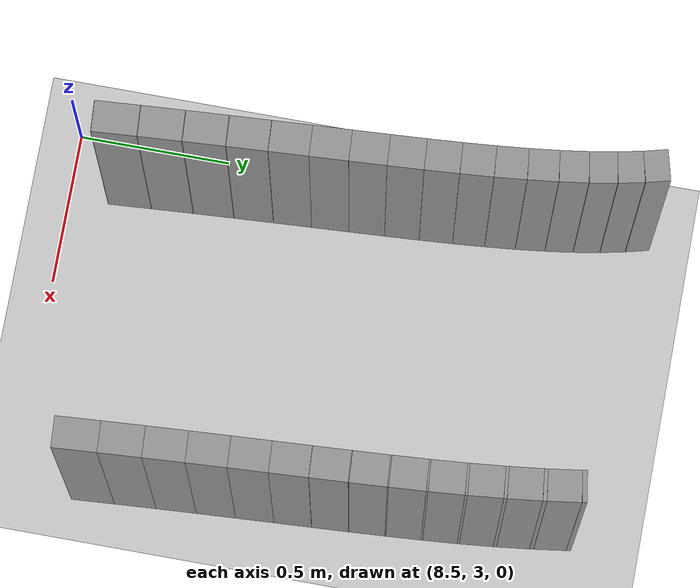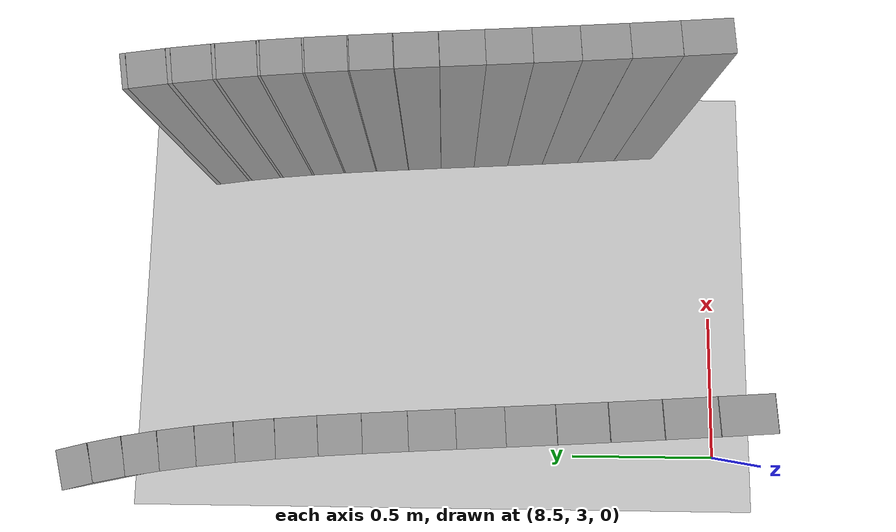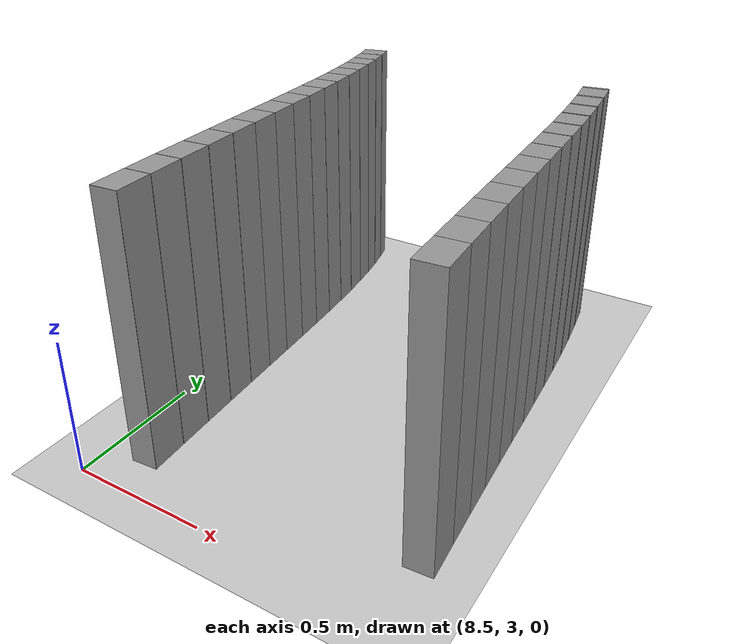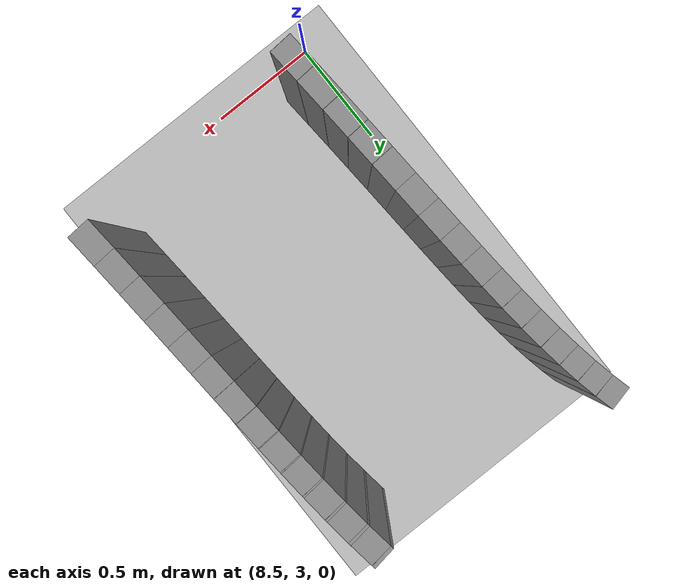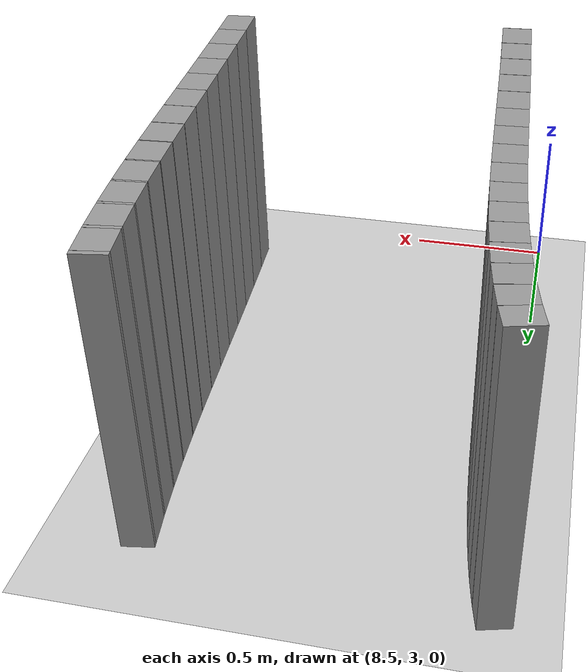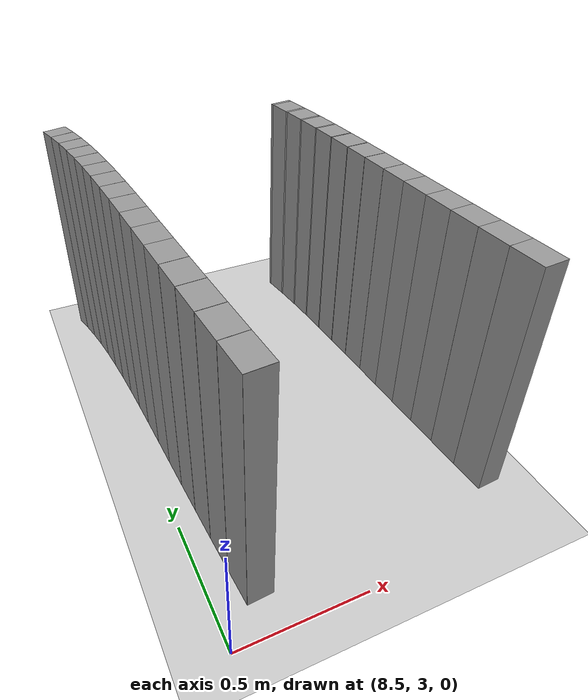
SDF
<sdf version="1.6">
 <world name="default">
  <include><uri>model://ground_plane</uri></include>
  <include><uri>model://sun</uri></include>
  <model name="wall_181_outward">
   <static>true</static>
   <link name="link">
    <collision name="collision">
     <geometry><box><size>0.0009846858905019167 0.1 1.0</size></box></geometry>
    </collision>
    <visual name="visual">
     <geometry><box><size>0.0009846858905019167 0.1 1.0</size></box></geometry>
     <material>
      <script><uri>file://media/materials/scripts/gazebo.material</uri><name>Gazebo/Gray</name></script>
     </material>
    </visual>
   </link>
   <pose>8.65808380273631 3.126943358180662 0.5 0 0 1.639837956855327</pose>
  </model>
  <model name="wall_182_outward">
   <static>true</static>
   <link name="link">
    <collision name="collision">
     <geometry><box><size>0.14365857857073439 0.1 1.0</size></box></geometry>
    </collision>
    <visual name="visual">
     <geometry><box><size>0.14365857857073439 0.1 1.0</size></box></geometry>
     <material>
      <script><uri>file://media/materials/scripts/gazebo.material</uri><name>Gazebo/Gray</name></script>
     </material>
    </visual>
   </link>
   <pose>8.65316512848498 3.199097534066887 0.5 0 0 1.6388532708069434</pose>
  </model>
  <model name="wall_183_outward">
   <static>true</static>
   <link name="link">
    <collision name="collision">
     <geometry><box><size>0.001421012813645482 0.1 1.0</size></box></geometry>
    </collision>
    <visual name="visual">
     <geometry><box><size>0.001421012813645482 0.1 1.0</size></box></geometry>
     <material>
      <script><uri>file://media/materials/scripts/gazebo.material</uri><name>Gazebo/Gray</name></script>
     </material>
    </visual>
   </link>
   <pose>8.648233109168988 3.27146946952171 0.5 0 0 1.6374322575152969</pose>
  </model>
  <model name="wall_184_outward">
   <static>true</static>
   <link name="link">
    <collision name="collision">
     <geometry><box><size>0.13919002764957894 0.1 1.0</size></box></geometry>
    </collision>
    <visual name="visual">
     <geometry><box><size>0.13919002764957894 0.1 1.0</size></box></geometry>
     <material>
      <script><uri>file://media/materials/scripts/gazebo.material</uri><name>Gazebo/Gray</name></script>
     </material>
    </visual>
   </link>
   <pose>8.643650382303097 3.3416254720422467 0.5 0 0 1.6360112442231782</pose>
  </model>
  <model name="wall_185_outward">
   <static>true</static>
   <link name="link">
    <collision name="collision">
     <geometry><box><size>0.001596361126806575 0.1 1.0</size></box></geometry>
    </collision>
    <visual name="visual">
     <geometry><box><size>0.001596361126806575 0.1 1.0</size></box></geometry>
     <material>
      <script><uri>file://media/materials/scripts/gazebo.material</uri><name>Gazebo/Gray</name></script>
     </material>
    </visual>
   </link>
   <pose>8.639064220814166 3.4118691108817245 0.5 0 0 1.6344148824183604</pose>
  </model>
  <model name="wall_186_outward">
   <static>true</static>
   <link name="link">
    <collision name="collision">
     <geometry><box><size>0.13500516715398175 0.1 1.0</size></box></geometry>
    </collision>
    <visual name="visual">
     <geometry><box><size>0.13500516715398175 0.1 1.0</size></box></geometry>
     <material>
      <script><uri>file://media/materials/scripts/gazebo.material</uri><name>Gazebo/Gray</name></script>
     </material>
    </visual>
   </link>
   <pose>8.634829501300867 3.4800384690677975 0.5 0 0 1.6328185206135242</pose>
  </model>
  <model name="wall_187_outward">
   <static>true</static>
   <link name="link">
    <collision name="collision">
     <geometry><box><size>0.001477948734229055 0.1 1.0</size></box></geometry>
    </collision>
    <visual name="visual">
     <geometry><box><size>0.001477948734229055 0.1 1.0</size></box></geometry>
     <material>
      <script><uri>file://media/materials/scripts/gazebo.material</uri><name>Gazebo/Gray</name></script>
     </material>
    </visual>
   </link>
   <pose>8.630600813319642 3.548148881778599 0.5 0 0 1.6313405713418323</pose>
  </model>
  <model name="wall_188_outward">
   <static>true</static>
   <link name="link">
    <collision name="collision">
     <geometry><box><size>0.13110091205188307 0.1 1.0</size></box></geometry>
    </collision>
    <visual name="visual">
     <geometry><box><size>0.13110091205188307 0.1 1.0</size></box></geometry>
     <material>
      <script><uri>file://media/materials/scripts/gazebo.material</uri><name>Gazebo/Gray</name></script>
     </material>
    </visual>
   </link>
   <pose>8.626686528373108 3.6143226443237637 0.5 0 0 1.6298626220689547</pose>
  </model>
  <model name="wall_189_outward">
   <static>true</static>
   <link name="link">
    <collision name="collision">
     <geometry><box><size>0.0010540876238989754 0.1 1.0</size></box></geometry>
    </collision>
    <visual name="visual">
     <geometry><box><size>0.0010540876238989754 0.1 1.0</size></box></geometry>
     <material>
      <script><uri>file://media/materials/scripts/gazebo.material</uri><name>Gazebo/Gray</name></script>
     </material>
    </visual>
   </link>
   <pose>8.622786398914531 3.6802849436821585 0.5 0 0 1.628808534248347</pose>
  </model>
  <model name="wall_190_outward">
   <static>true</static>
   <link name="link">
    <collision name="collision">
     <geometry><box><size>0.1274690021187451 0.1 1.0</size></box></geometry>
    </collision>
    <visual name="visual">
     <geometry><box><size>0.1274690021187451 0.1 1.0</size></box></geometry>
     <material>
      <script><uri>file://media/materials/scripts/gazebo.material</uri><name>Gazebo/Gray</name></script>
     </material>
    </visual>
   </link>
   <pose>8.619127606295903 3.744442245281431 0.5 0 0 1.6277544464307574</pose>
  </model>
  <model name="wall_191_outward">
   <static>true</static>
   <link name="link">
    <collision name="collision">
     <geometry><box><size>0.12408286811491556 0.1 1.0</size></box></geometry>
    </collision>
    <visual name="visual">
     <geometry><box><size>0.12408286811491556 0.1 1.0</size></box></geometry>
     <material>
      <script><uri>file://media/materials/scripts/gazebo.material</uri><name>Gazebo/Gray</name></script>
     </material>
    </visual>
   </link>
   <pose>8.61200878268524 3.870016551770031 0.5 0 0 1.62708827171126</pose>
  </model>
  <model name="wall_192_outward">
   <static>true</static>
   <link name="link">
    <collision name="collision">
     <geometry><box><size>0.11960977318167446 0.1 1.0</size></box></geometry>
    </collision>
    <visual name="visual">
     <geometry><box><size>0.11960977318167446 0.1 1.0</size></box></geometry>
     <material>
      <script><uri>file://media/materials/scripts/gazebo.material</uri><name>Gazebo/Gray</name></script>
     </material>
    </visual>
   </link>
   <pose>8.605070868698578 3.991665160925017 0.5 0 0 1.6284711639940075</pose>
  </model>
  <model name="wall_193_outward">
   <static>true</static>
   <link name="link">
    <collision name="collision">
     <geometry><box><size>0.11523822448251414 0.1 1.0</size></box></geometry>
    </collision>
    <visual name="visual">
     <geometry><box><size>0.11523822448251414 0.1 1.0</size></box></geometry>
     <material>
      <script><uri>file://media/materials/scripts/gazebo.material</uri><name>Gazebo/Gray</name></script>
     </material>
    </visual>
   </link>
   <pose>8.59807111550164 4.108880105906995 0.5 0 0 1.6324890935750607</pose>
  </model>
  <model name="wall_194_outward">
   <static>true</static>
   <link name="link">
    <collision name="collision">
     <geometry><box><size>0.11079864901834684 0.1 1.0</size></box></geometry>
    </collision>
    <visual name="visual">
     <geometry><box><size>0.11079864901834684 0.1 1.0</size></box></geometry>
     <material>
      <script><uri>file://media/materials/scripts/gazebo.material</uri><name>Gazebo/Gray</name></script>
     </material>
    </visual>
   </link>
   <pose>8.590704701506574 4.221657484795065 0.5 0 0 1.6396961787246884</pose>
  </model>
  <model name="wall_195_outward">
   <static>true</static>
   <link name="link">
    <collision name="collision">
     <geometry><box><size>0.1062916871452372 0.1 1.0</size></box></geometry>
    </collision>
    <visual name="visual">
     <geometry><box><size>0.1062916871452372 0.1 1.0</size></box></geometry>
     <material>
      <script><uri>file://media/materials/scripts/gazebo.material</uri><name>Gazebo/Gray</name></script>
     </material>
    </visual>
   </link>
   <pose>8.582653476334471 4.329902025655575 0.5 0 0 1.6506095522564228</pose>
  </model>
  <model name="wall_196_outward">
   <static>true</static>
   <link name="link">
    <collision name="collision">
     <geometry><box><size>0.10171289454144286 0.1 1.0</size></box></geometry>
    </collision>
    <visual name="visual">
     <geometry><box><size>0.10171289454144286 0.1 1.0</size></box></geometry>
     <material>
      <script><uri>file://media/materials/scripts/gazebo.material</uri><name>Gazebo/Gray</name></script>
     </material>
    </visual>
   </link>
   <pose>8.573596636017339 4.433506243989507 0.5 0 0 1.665707491691132</pose>
  </model>
  <model name="wall_197_outward">
   <static>true</static>
   <link name="link">
    <collision name="collision">
     <geometry><box><size>0.09706615270189756 0.1 1.0</size></box></geometry>
    </collision>
    <visual name="visual">
     <geometry><box><size>0.09706615270189756 0.1 1.0</size></box></geometry>
     <material>
      <script><uri>file://media/materials/scripts/gazebo.material</uri><name>Gazebo/Gray</name></script>
     </material>
    </visual>
   </link>
   <pose>8.563224902694095 4.532348253878128 0.5 0 0 1.6854462675255808</pose>
  </model>
  <model name="wall_198_outward">
   <static>true</static>
   <link name="link">
    <collision name="collision">
     <geometry><box><size>0.09235992115724898 0.1 1.0</size></box></geometry>
    </collision>
    <visual name="visual">
     <geometry><box><size>0.09235992115724898 0.1 1.0</size></box></geometry>
     <material>
      <script><uri>file://media/materials/scripts/gazebo.material</uri><name>Gazebo/Gray</name></script>
     </material>
    </visual>
   </link>
   <pose>8.55125463066131 4.626294491207142 0.5 0 0 1.7102287401825482</pose>
  </model>
  <model name="wall_199_outward">
   <static>true</static>
   <link name="link">
    <collision name="collision">
     <geometry><box><size>0.08759831414546027 0.1 1.0</size></box></geometry>
    </collision>
    <visual name="visual">
     <geometry><box><size>0.08759831414546027 0.1 1.0</size></box></geometry>
     <material>
      <script><uri>file://media/materials/scripts/gazebo.material</uri><name>Gazebo/Gray</name></script>
     </material>
    </visual>
   </link>
   <pose>8.53744287080287 4.715196875224038 0.5 0 0 1.7404158646846464</pose>
  </model>
  <model name="wall_200_outward">
   <static>true</static>
   <link name="link">
    <collision name="collision">
     <geometry><box><size>0.08279096462977255 0.1 1.0</size></box></geometry>
    </collision>
    <visual name="visual">
     <geometry><box><size>0.08279096462977255 0.1 1.0</size></box></geometry>
     <material>
      <script><uri>file://media/materials/scripts/gazebo.material</uri><name>Gazebo/Gray</name></script>
     </material>
    </visual>
   </link>
   <pose>8.52160032079816 4.79889155926119 0.5 0 0 1.7763433578772803</pose>
  </model>
  <model name="wall_201_outward">
   <static>true</static>
   <link name="link">
    <collision name="collision">
     <geometry><box><size>0.07796044053849092 0.1 1.0</size></box></geometry>
    </collision>
    <visual name="visual">
     <geometry><box><size>0.07796044053849092 0.1 1.0</size></box></geometry>
     <material>
      <script><uri>file://media/materials/scripts/gazebo.material</uri><name>Gazebo/Gray</name></script>
     </material>
    </visual>
   </link>
   <pose>8.503601538717838 4.877207944605388 0.5 0 0 1.818308032217738</pose>
  </model>
  <model name="wall_349_inward">
   <static>true</static>
   <link name="link">
    <collision name="collision">
     <geometry><box><size>0.14245572826187478 0.1 1.0</size></box></geometry>
    </collision>
    <visual name="visual">
     <geometry><box><size>0.14245572826187478 0.1 1.0</size></box></geometry>
     <material>
      <script><uri>file://media/materials/scripts/gazebo.material</uri><name>Gazebo/Gray</name></script>
     </material>
    </visual>
   </link>
   <pose>9.650857566467433 3.266993123699071 0.5 0 0 1.6388532708069428</pose>
  </model>
  <model name="wall_350_inward">
   <static>true</static>
   <link name="link">
    <collision name="collision">
     <geometry><box><size>0.13768133894507925 0.1 1.0</size></box></geometry>
    </collision>
    <visual name="visual">
     <geometry><box><size>0.13768133894507925 0.1 1.0</size></box></geometry>
     <material>
      <script><uri>file://media/materials/scripts/gazebo.material</uri><name>Gazebo/Gray</name></script>
     </material>
    </visual>
   </link>
   <pose>9.641527499945772 3.4067504289086425 0.5 0 0 1.6360112442231702</pose>
  </model>
  <model name="wall_351_inward">
   <static>true</static>
   <link name="link">
    <collision name="collision">
     <geometry><box><size>0.13346801039905704 0.1 1.0</size></box></geometry>
    </collision>
    <visual name="visual">
     <geometry><box><size>0.13346801039905704 0.1 1.0</size></box></geometry>
     <material>
      <script><uri>file://media/materials/scripts/gazebo.material</uri><name>Gazebo/Gray</name></script>
     </material>
    </visual>
   </link>
   <pose>9.632904906642807 3.5420504528118344 0.5 0 0 1.632818520613537</pose>
  </model>
  <model name="wall_352_inward">
   <static>true</static>
   <link name="link">
    <collision name="collision">
     <geometry><box><size>0.1298348927739865 0.1 1.0</size></box></geometry>
    </collision>
    <visual name="visual">
     <geometry><box><size>0.1298348927739865 0.1 1.0</size></box></geometry>
     <material>
      <script><uri>file://media/materials/scripts/gazebo.material</uri><name>Gazebo/Gray</name></script>
     </material>
    </visual>
   </link>
   <pose>9.62493636650579 3.6734603809795803 0.5 0 0 1.629862622068953</pose>
  </model>
  <model name="wall_353_inward">
   <static>true</static>
   <link name="link">
    <collision name="collision">
     <geometry><box><size>0.12677519018877634 0.1 1.0</size></box></geometry>
    </collision>
    <visual name="visual">
     <geometry><box><size>0.12677519018877634 0.1 1.0</size></box></geometry>
     <material>
      <script><uri>file://media/materials/scripts/gazebo.material</uri><name>Gazebo/Gray</name></script>
     </material>
    </visual>
   </link>
   <pose>9.617495676311542 3.801549418412253 0.5 0 0 1.627754446430746</pose>
  </model>
  <model name="wall_354_inward">
   <static>true</static>
   <link name="link">
    <collision name="collision">
     <geometry><box><size>0.1239285119475373 0.1 1.0</size></box></geometry>
    </collision>
    <visual name="visual">
     <geometry><box><size>0.1239285119475373 0.1 1.0</size></box></geometry>
     <material>
      <script><uri>file://media/materials/scripts/gazebo.material</uri><name>Gazebo/Gray</name></script>
     </material>
    </visual>
   </link>
   <pose>9.61040099880638 3.926700328794552 0.5 0 0 1.6270873751651376</pose>
  </model>
  <model name="wall_355_inward">
   <static>true</static>
   <link name="link">
    <collision name="collision">
     <geometry><box><size>0.0006918943592319045 0.1 1.0</size></box></geometry>
    </collision>
    <visual name="visual">
     <geometry><box><size>0.0006918943592319045 0.1 1.0</size></box></geometry>
     <material>
      <script><uri>file://media/materials/scripts/gazebo.material</uri><name>Gazebo/Gray</name></script>
     </material>
    </visual>
   </link>
   <pose>9.606895105240417 3.988911823850194 0.5 0 0 1.62777926958148</pose>
  </model>
  <model name="wall_356_inward">
   <static>true</static>
   <link name="link">
    <collision name="collision">
     <geometry><box><size>0.1209602041920776 0.1 1.0</size></box></geometry>
    </collision>
    <visual name="visual">
     <geometry><box><size>0.1209602041920776 0.1 1.0</size></box></geometry>
     <material>
      <script><uri>file://media/materials/scripts/gazebo.material</uri><name>Gazebo/Gray</name></script>
     </material>
    </visual>
   </link>
   <pose>9.603389156294176 4.049636749395266 0.5 0 0 1.6284711639940022</pose>
  </model>
  <model name="wall_357_inward">
   <static>true</static>
   <link name="link">
    <collision name="collision">
     <geometry><box><size>0.002008963439190876 0.1 1.0</size></box></geometry>
    </collision>
    <visual name="visual">
     <geometry><box><size>0.002008963439190876 0.1 1.0</size></box></geometry>
     <material>
      <script><uri>file://media/materials/scripts/gazebo.material</uri><name>Gazebo/Gray</name></script>
     </material>
    </visual>
   </link>
   <pose>9.599842994068009 4.11101898245386 0.5 0 0 1.6304801287837094</pose>
  </model>
  <model name="wall_358_inward">
   <static>true</static>
   <link name="link">
    <collision name="collision">
     <geometry><box><size>0.11804448731502447 0.1 1.0</size></box></geometry>
    </collision>
    <visual name="visual">
     <geometry><box><size>0.11804448731502447 0.1 1.0</size></box></geometry>
     <material>
      <script><uri>file://media/materials/scripts/gazebo.material</uri><name>Gazebo/Gray</name></script>
     </material>
    </visual>
   </link>
   <pose>9.596144142175817 4.170931635665854 0.5 0 0 1.6324890935750698</pose>
  </model>
  <model name="wall_359_inward">
   <static>true</static>
   <link name="link">
    <collision name="collision">
     <geometry><box><size>0.003603534775835416 0.1 1.0</size></box></geometry>
    </collision>
    <visual name="visual">
     <geometry><box><size>0.003603534775835416 0.1 1.0</size></box></geometry>
     <material>
      <script><uri>file://media/materials/scripts/gazebo.material</uri><name>Gazebo/Gray</name></script>
     </material>
    </visual>
   </link>
   <pose>9.592387640808173 4.231639523425143 0.5 0 0 1.6360926361501031</pose>
  </model>
  <model name="wall_360_inward">
   <static>true</static>
   <link name="link">
    <collision name="collision">
     <geometry><box><size>0.11532879856731755 0.1 1.0</size></box></geometry>
    </collision>
    <visual name="visual">
     <geometry><box><size>0.11532879856731755 0.1 1.0</size></box></geometry>
     <material>
      <script><uri>file://media/materials/scripts/gazebo.material</uri><name>Gazebo/Gray</name></script>
     </material>
    </visual>
   </link>
   <pose>9.58830014979762 4.290965032665978 0.5 0 0 1.6396961787246869</pose>
  </model>
  <model name="wall_361_inward">
   <static>true</static>
   <link name="link">
    <collision name="collision">
     <geometry><box><size>0.005456659686704238 0.1 1.0</size></box></geometry>
    </collision>
    <visual name="visual">
     <geometry><box><size>0.005456659686704238 0.1 1.0</size></box></geometry>
     <material>
      <script><uri>file://media/materials/scripts/gazebo.material</uri><name>Gazebo/Gray</name></script>
     </material>
    </visual>
   </link>
   <pose>9.584127541689405 4.35121340516268 0.5 0 0 1.645152865490588</pose>
  </model>
  <model name="wall_362_inward">
   <static>true</static>
   <link name="link">
    <collision name="collision">
     <geometry><box><size>0.11279461416686547 0.1 1.0</size></box></geometry>
    </collision>
    <visual name="visual">
     <geometry><box><size>0.11279461416686547 0.1 1.0</size></box></geometry>
     <material>
      <script><uri>file://media/materials/scripts/gazebo.material</uri><name>Gazebo/Gray</name></script>
     </material>
    </visual>
   </link>
   <pose>9.579428385848349 4.4101519688950255 0.5 0 0 1.650609552256414</pose>
  </model>
  <model name="wall_363_inward">
   <static>true</static>
   <link name="link">
    <collision name="collision">
     <geometry><box><size>0.007548898018775783 0.1 1.0</size></box></geometry>
    </collision>
    <visual name="visual">
     <geometry><box><size>0.007548898018775783 0.1 1.0</size></box></geometry>
     <material>
      <script><uri>file://media/materials/scripts/gazebo.material</uri><name>Gazebo/Gray</name></script>
     </material>
    </visual>
   </link>
   <pose>9.574602587414052 4.4701297962154865 0.5 0 0 1.658158521973656</pose>
  </model>
  <model name="wall_364_inward">
   <static>true</static>
   <link name="link">
    <collision name="collision">
     <geometry><box><size>0.11042230528625784 0.1 1.0</size></box></geometry>
    </collision>
    <visual name="visual">
     <geometry><box><size>0.11042230528625784 0.1 1.0</size></box></geometry>
     <material>
      <script><uri>file://media/materials/scripts/gazebo.material</uri><name>Gazebo/Gray</name></script>
     </material>
    </visual>
   </link>
   <pose>9.569040971522533 4.528852515459711 0.5 0 0 1.665707491691128</pose>
  </model>
  <model name="wall_365_inward">
   <static>true</static>
   <link name="link">
    <collision name="collision">
     <geometry><box><size>0.009869227697023473 0.1 1.0</size></box></geometry>
    </collision>
    <visual name="visual">
     <geometry><box><size>0.009869227697023473 0.1 1.0</size></box></geometry>
     <material>
      <script><uri>file://media/materials/scripts/gazebo.material</uri><name>Gazebo/Gray</name></script>
     </material>
    </visual>
   </link>
   <pose>9.563292574528031 4.588722730271003 0.5 0 0 1.6755768796085069</pose>
  </model>
  <model name="wall_366_inward">
   <static>true</static>
   <link name="link">
    <collision name="collision">
     <geometry><box><size>0.10819694216894109 0.1 1.0</size></box></geometry>
    </collision>
    <visual name="visual">
     <geometry><box><size>0.10819694216894109 0.1 1.0</size></box></geometry>
     <material>
      <script><uri>file://media/materials/scripts/gazebo.material</uri><name>Gazebo/Gray</name></script>
     </material>
    </visual>
   </link>
   <pose>9.556587661116655 4.647373589176499 0.5 0 0 1.685446267525591</pose>
  </model>
  <model name="wall_367_inward">
   <static>true</static>
   <link name="link">
    <collision name="collision">
     <geometry><box><size>0.012390919233520988 0.1 1.0</size></box></geometry>
    </collision>
    <visual name="visual">
     <geometry><box><size>0.012390919233520988 0.1 1.0</size></box></geometry>
     <material>
      <script><uri>file://media/materials/scripts/gazebo.material</uri><name>Gazebo/Gray</name></script>
     </material>
    </visual>
   </link>
   <pose>9.549613890656758 4.7072624290675895 0.5 0 0 1.697837503854039</pose>
  </model>
  <model name="wall_368_inward">
   <static>true</static>
   <link name="link">
    <collision name="collision">
     <geometry><box><size>0.10610321070763563 0.1 1.0</size></box></geometry>
    </collision>
    <visual name="visual">
     <geometry><box><size>0.10610321070763563 0.1 1.0</size></box></geometry>
     <material>
      <script><uri>file://media/materials/scripts/gazebo.material</uri><name>Gazebo/Gray</name></script>
     </material>
    </visual>
   </link>
   <pose>9.541455759351146 4.765944701821706 0.5 0 0 1.710228740182549</pose>
  </model>
  <model name="wall_369_inward">
   <static>true</static>
   <link name="link">
    <collision name="collision">
     <geometry><box><size>0.015092989166031023 0.1 1.0</size></box></geometry>
    </collision>
    <visual name="visual">
     <geometry><box><size>0.015092989166031023 0.1 1.0</size></box></geometry>
     <material>
      <script><uri>file://media/materials/scripts/gazebo.material</uri><name>Gazebo/Gray</name></script>
     </material>
    </visual>
   </link>
   <pose>9.532921096949735 4.82593801852085 0.5 0 0 1.7253223024335973</pose>
  </model>
 </world>
</sdf>
